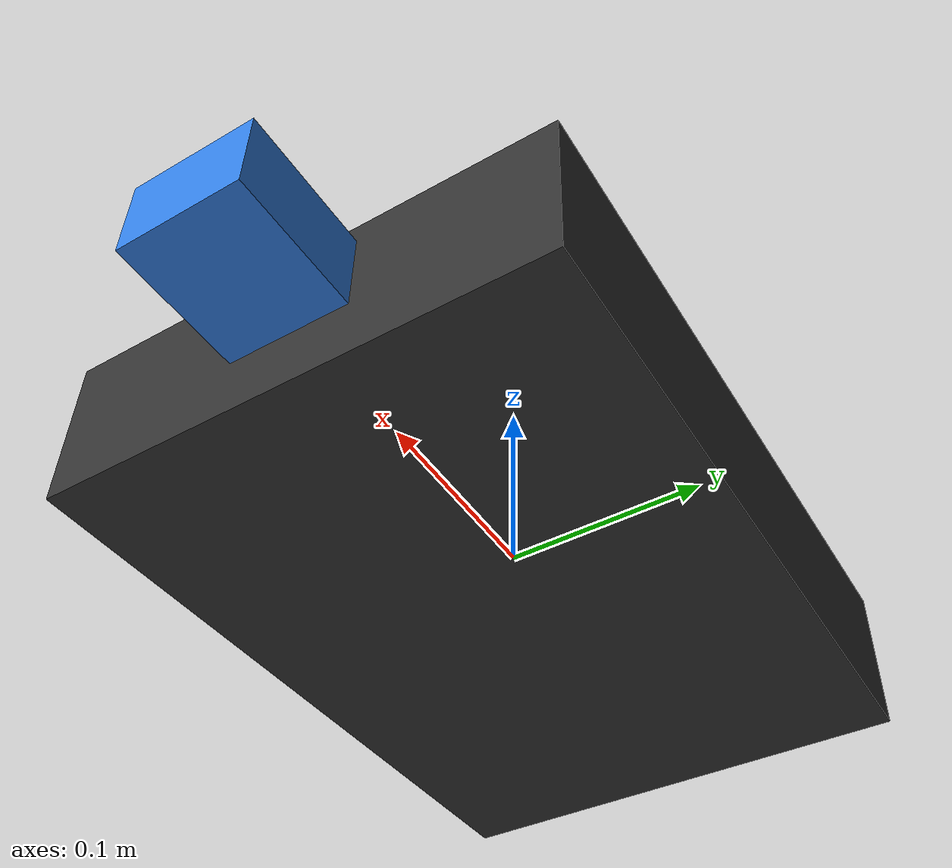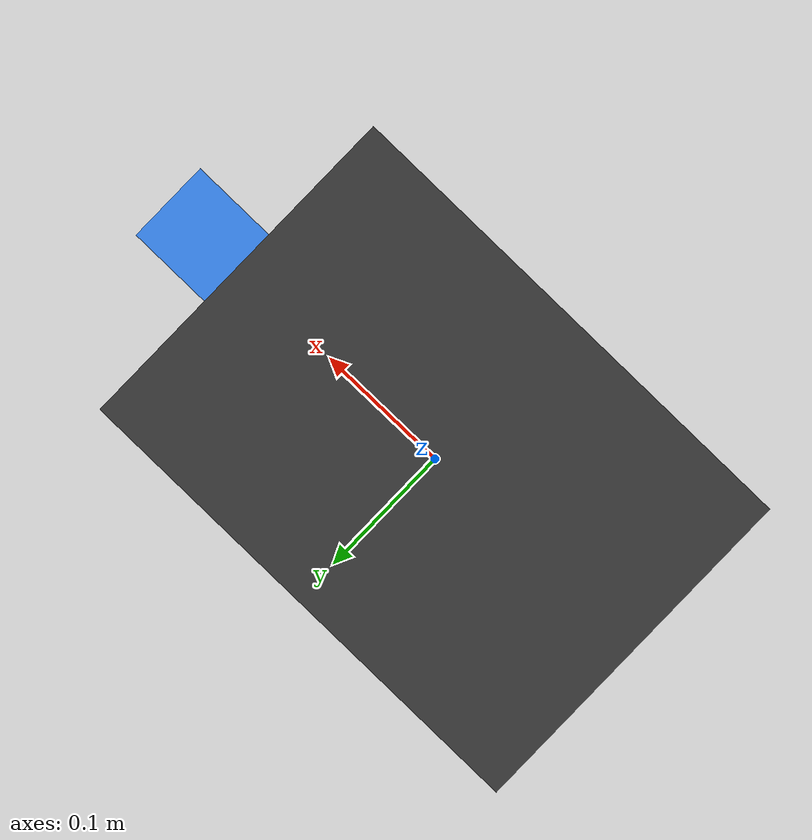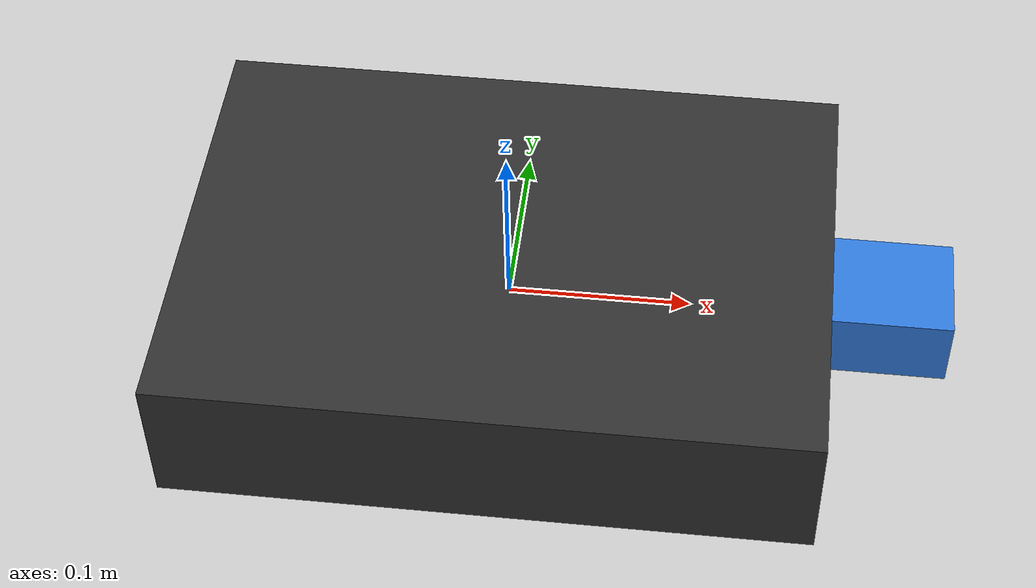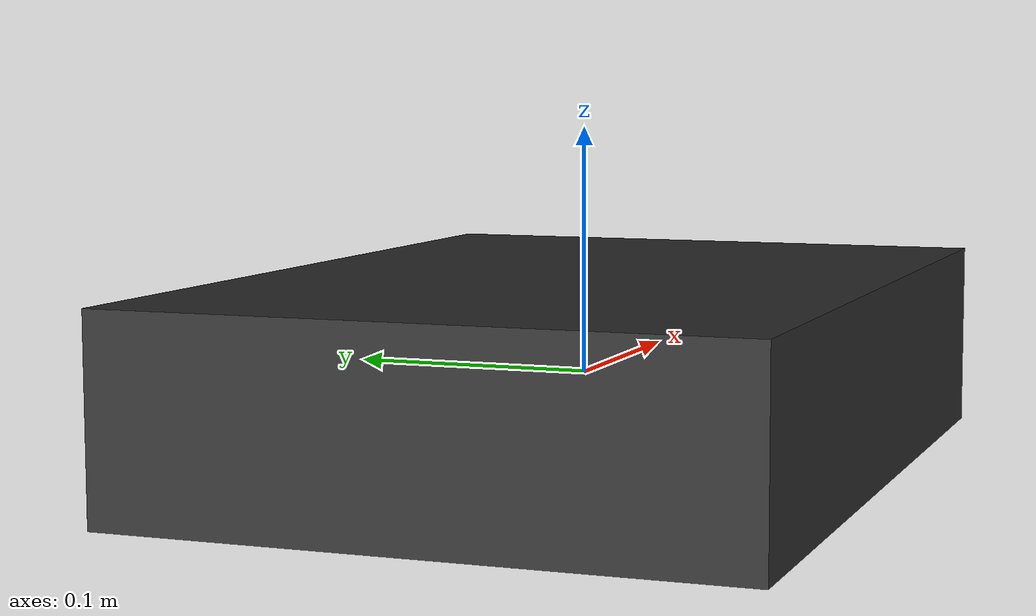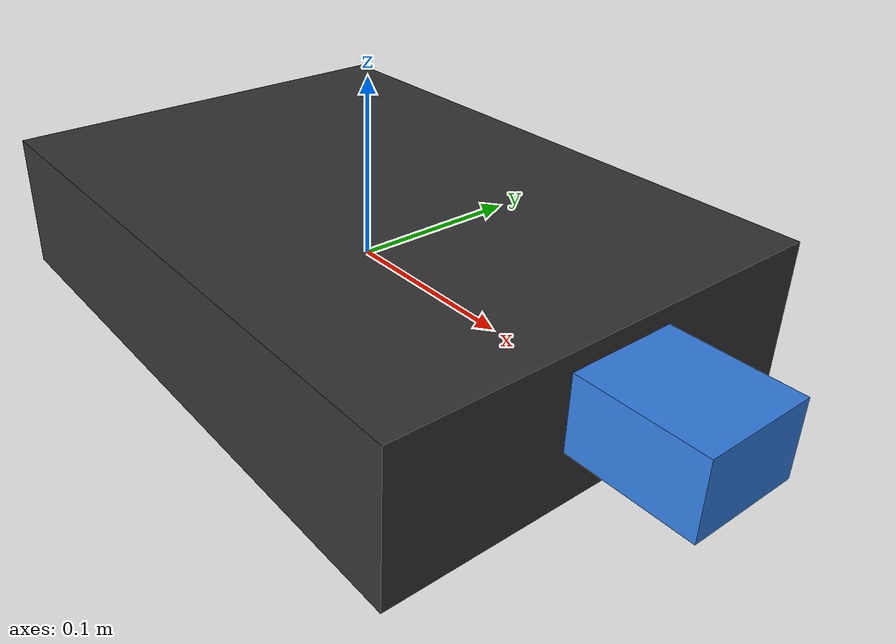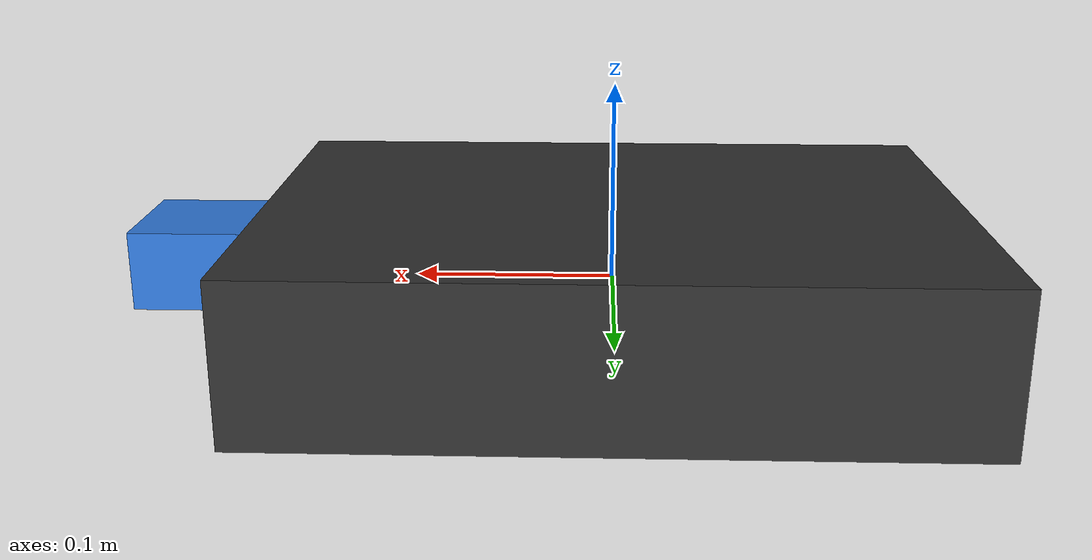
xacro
<?xml version="1.0"?>
<!--
This Xacro is atiny drone model
Xacro allows us to define a simple URDF model with parameters
Used as visual representation of the drone's orientation and movement. Used in `bringup.launch`
-->
<robot xmlns:xacro="http://www.ros.org/wiki/xacro" name="pixhawk_drone">
  <material name="body_grey">
    <color rgba="0.20 0.20 0.20 1.0"/>
  </material>

  <material name="nose_blue">
    <color rgba="0.20 0.50 0.90 1.0"/>
  </material>

  <link name="base_link">
    <visual>
      <geometry>
        <box size="0.35 0.25 0.08"/>
      </geometry>
      <material name="body_grey"/>
    </visual>
  </link>

  <link name="nose_link">
    <visual>
      <geometry>
        <box size="0.08 0.06 0.04"/>
      </geometry>
      <material name="nose_blue"/>
    </visual>
  </link>

  <joint name="nose_joint" type="fixed">
    <parent link="base_link"/>
    <child link="nose_link"/>
    <origin xyz="0.20 0 0.01" rpy="0 0 0"/>
  </joint>
</robot>
